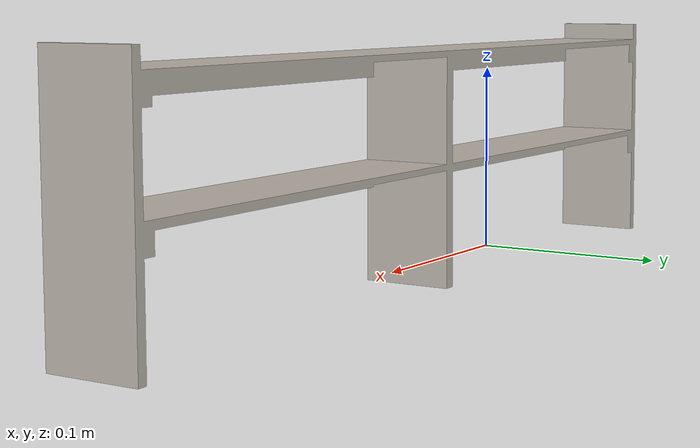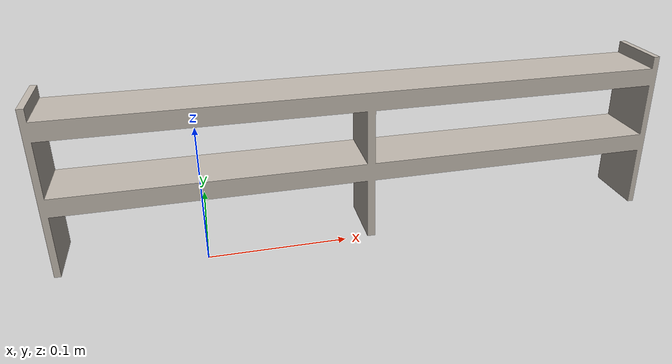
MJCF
<?xml version="1.0" ?>
<mujoco model="shelf">
  <asset>
    <mesh file="../meshes/shelf.stl" name="shelf_mesh" scale="0.00023 0.00015 0.00015"/>
    <texture file="../textures/shelf.png" type="2d" name="tex-shelf"/>
    <material name="shelf" reflectance="0.7" texrepeat="15 15" texture="tex-shelf" texuniform="true"/>
  </asset>
  <worldbody>
    <body>
      <body name="object">
        <geom pos="0 0 0" mesh="shelf_mesh" type="mesh" solimp="0.998 0.998 0.001" solref="0.001 1" density="100" friction="0.95 0.3 0.1" material="shelf" group="0" condim="4"/>
      </body>
      <site rgba="0 0 0 0" size="0.005" pos="-0.22309999332198605 -0.03004116520499052 -0.11657879567626132" name="bottom_site"/>
      <site rgba="0 0 0 0" size="0.005" pos="0.22310000667801397 0.03895883479500949 0.0720212043237387" name="top_site"/>
      <site rgba="0 0 0 0" size="0.005" pos="0.22310000000000002 0.0345 0" name="horizontal_radius_site"/>
    </body>
  </worldbody>
</mujoco>
